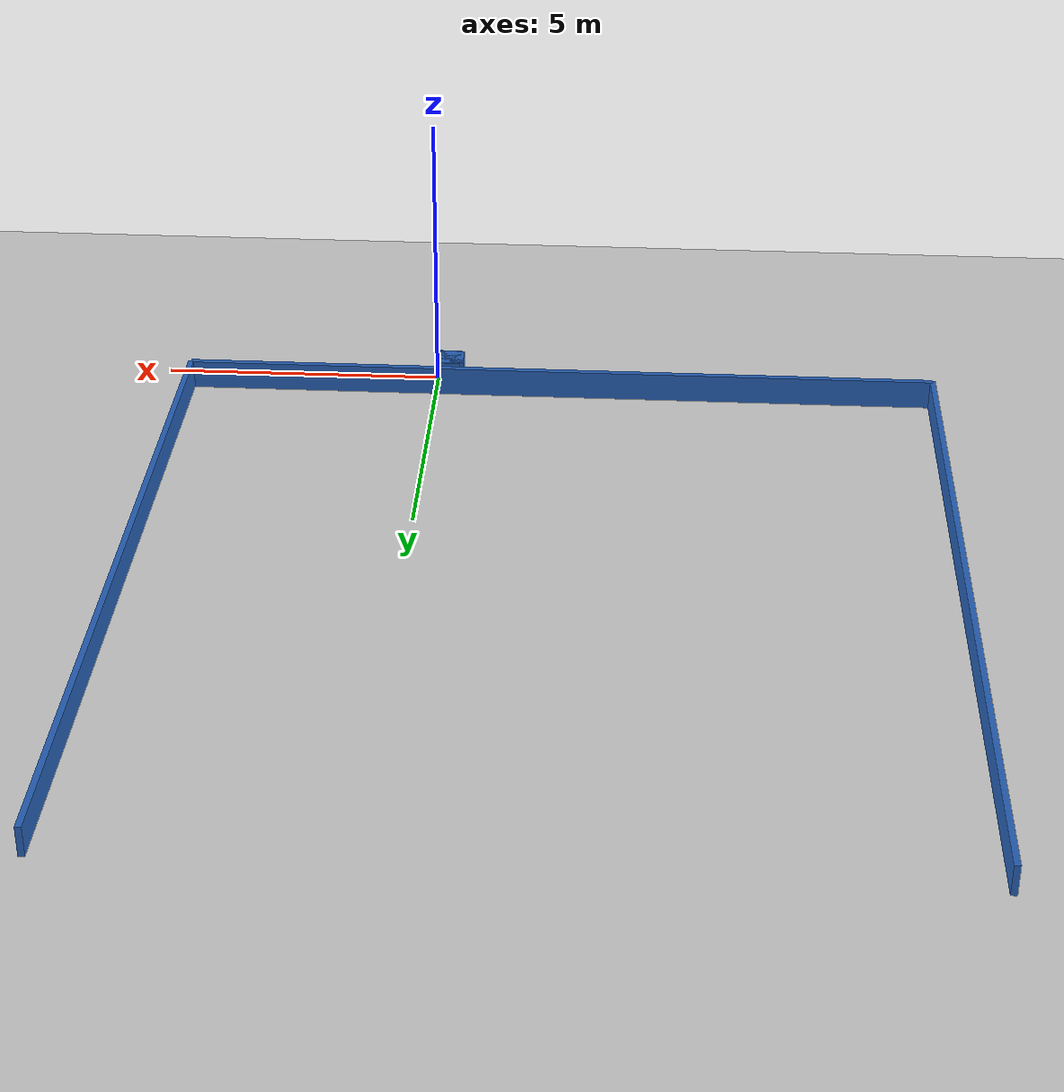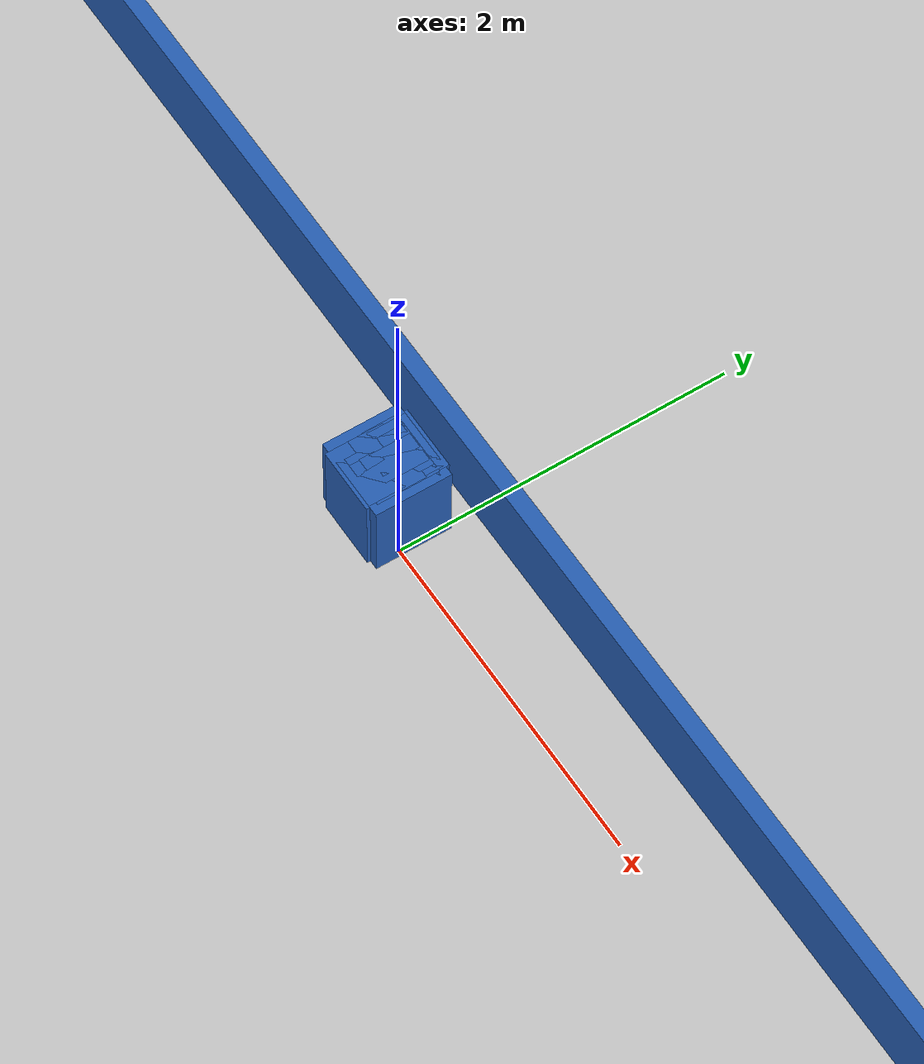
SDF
<?xml version="1.0" ?>
    <sdf version="1.5">
      <world name="default">
        <!-- A global light source -->
        <include>
          <uri>model://sun</uri>
        </include>
        <!-- A ground plane -->
        <include>
          <uri>model://ground_plane</uri>
        </include>

    <model name='libopen_space_final_T2B_91_29'>
      <static>1</static>
      <pose frame=''>-0.225000 0.075000 0.000000 0.000000 0.000000 0.000000</pose>
      <link name='link'>
        <inertial>
          <mass>1</mass>
          <inertia>
            <ixx>0.145833</ixx>
            <ixy>0</ixy>
            <ixz>0</ixz>
            <iyy>0.145833</iyy>
            <iyz>0</iyz>
            <izz>0.125</izz>
          </inertia>
        </inertial>
        <collision name='collision'>
          <geometry>
            <box>
              <size>0.50 0.45 1</size>
            </box>
          </geometry>
          <max_contacts>10</max_contacts>
          <surface>
            <contact>
              <ode/>
            </contact>
            <bounce/>
            <friction>
              <torsional>
                <ode/>
              </torsional>
              <ode/>
            </friction>
          </surface>
        </collision>
        <visual name='visual'>
          <geometry>
            <box>
              <size>0.50 0.45 1</size>
            </box>
          </geometry>
	    <material>
              <ambient>0.152000 0.379000 0.720000 1</ambient>
	      <diffuse>0.152000 0.379000 0.720000 1</diffuse>
          </material>
          <material>
            <script>
              <name>Gazebo/Grey</name>
              <uri>file://media/materials/scripts/gazebo.material</uri>
            </script>
          </material>
        </visual>
        <self_collide>0</self_collide>
        <kinematic>0</kinematic>
        <gravity>1</gravity>
      </link>
      <plugin name='libopen_space_final_T2B_91_29' filename='libopen_space_final_T2B_91_29.so'/>
    </model>

    <model name='libopen_space_final_T2B_118_50'>
      <static>1</static>
      <pose frame=''>-0.225000 0.075000 0.000000 0.000000 0.000000 0.000000</pose>
      <link name='link'>
        <inertial>
          <mass>1</mass>
          <inertia>
            <ixx>0.145833</ixx>
            <ixy>0</ixy>
            <ixz>0</ixz>
            <iyy>0.145833</iyy>
            <iyz>0</iyz>
            <izz>0.125</izz>
          </inertia>
        </inertial>
        <collision name='collision'>
          <geometry>
            <box>
              <size>0.23 0.36 1</size>
            </box>
          </geometry>
          <max_contacts>10</max_contacts>
          <surface>
            <contact>
              <ode/>
            </contact>
            <bounce/>
            <friction>
              <torsional>
                <ode/>
              </torsional>
              <ode/>
            </friction>
          </surface>
        </collision>
        <visual name='visual'>
          <geometry>
            <box>
              <size>0.23 0.36 1</size>
            </box>
          </geometry>
	    <material>
              <ambient>0.152000 0.379000 0.720000 1</ambient>
	      <diffuse>0.152000 0.379000 0.720000 1</diffuse>
          </material>
          <material>
            <script>
              <name>Gazebo/Grey</name>
              <uri>file://media/materials/scripts/gazebo.material</uri>
            </script>
          </material>
        </visual>
        <self_collide>0</self_collide>
        <kinematic>0</kinematic>
        <gravity>1</gravity>
      </link>
      <plugin name='libopen_space_final_T2B_118_50' filename='libopen_space_final_T2B_118_50.so'/>
    </model>

    <model name='libopen_space_final_T2B_83_23'>
      <static>1</static>
      <pose frame=''>-0.225000 0.075000 0.000000 0.000000 0.000000 0.000000</pose>
      <link name='link'>
        <inertial>
          <mass>1</mass>
          <inertia>
            <ixx>0.145833</ixx>
            <ixy>0</ixy>
            <ixz>0</ixz>
            <iyy>0.145833</iyy>
            <iyz>0</iyz>
            <izz>0.125</izz>
          </inertia>
        </inertial>
        <collision name='collision'>
          <geometry>
            <box>
              <size>0.24 0.25 1</size>
            </box>
          </geometry>
          <max_contacts>10</max_contacts>
          <surface>
            <contact>
              <ode/>
            </contact>
            <bounce/>
            <friction>
              <torsional>
                <ode/>
              </torsional>
              <ode/>
            </friction>
          </surface>
        </collision>
        <visual name='visual'>
          <geometry>
            <box>
              <size>0.24 0.25 1</size>
            </box>
          </geometry>
	    <material>
              <ambient>0.152000 0.379000 0.720000 1</ambient>
	      <diffuse>0.152000 0.379000 0.720000 1</diffuse>
          </material>
          <material>
            <script>
              <name>Gazebo/Grey</name>
              <uri>file://media/materials/scripts/gazebo.material</uri>
            </script>
          </material>
        </visual>
        <self_collide>0</self_collide>
        <kinematic>0</kinematic>
        <gravity>1</gravity>
      </link>
      <plugin name='libopen_space_final_T2B_83_23' filename='libopen_space_final_T2B_83_23.so'/>
    </model>

    <model name='libopen_space_final_T2B_127_53'>
      <static>1</static>
      <pose frame=''>-0.225000 0.075000 0.000000 0.000000 0.000000 0.000000</pose>
      <link name='link'>
        <inertial>
          <mass>1</mass>
          <inertia>
            <ixx>0.145833</ixx>
            <ixy>0</ixy>
            <ixz>0</ixz>
            <iyy>0.145833</iyy>
            <iyz>0</iyz>
            <izz>0.125</izz>
          </inertia>
        </inertial>
        <collision name='collision'>
          <geometry>
            <box>
              <size>0.48 0.35 1</size>
            </box>
          </geometry>
          <max_contacts>10</max_contacts>
          <surface>
            <contact>
              <ode/>
            </contact>
            <bounce/>
            <friction>
              <torsional>
                <ode/>
              </torsional>
              <ode/>
            </friction>
          </surface>
        </collision>
        <visual name='visual'>
          <geometry>
            <box>
              <size>0.48 0.35 1</size>
            </box>
          </geometry>
	    <material>
              <ambient>0.152000 0.379000 0.720000 1</ambient>
	      <diffuse>0.152000 0.379000 0.720000 1</diffuse>
          </material>
          <material>
            <script>
              <name>Gazebo/Grey</name>
              <uri>file://media/materials/scripts/gazebo.material</uri>
            </script>
          </material>
        </visual>
        <self_collide>0</self_collide>
        <kinematic>0</kinematic>
        <gravity>1</gravity>
      </link>
      <plugin name='libopen_space_final_T2B_127_53' filename='libopen_space_final_T2B_127_53.so'/>
    </model>

    <model name='libopen_space_final_T2B_111_12'>
      <static>1</static>
      <pose frame=''>-0.225000 0.075000 0.000000 0.000000 0.000000 0.000000</pose>
      <link name='link'>
        <inertial>
          <mass>1</mass>
          <inertia>
            <ixx>0.145833</ixx>
            <ixy>0</ixy>
            <ixz>0</ixz>
            <iyy>0.145833</iyy>
            <iyz>0</iyz>
            <izz>0.125</izz>
          </inertia>
        </inertial>
        <collision name='collision'>
          <geometry>
            <box>
              <size>0.37 0.45 1</size>
            </box>
          </geometry>
          <max_contacts>10</max_contacts>
          <surface>
            <contact>
              <ode/>
            </contact>
            <bounce/>
            <friction>
              <torsional>
                <ode/>
              </torsional>
              <ode/>
            </friction>
          </surface>
        </collision>
        <visual name='visual'>
          <geometry>
            <box>
              <size>0.37 0.45 1</size>
            </box>
          </geometry>
	    <material>
              <ambient>0.152000 0.379000 0.720000 1</ambient>
	      <diffuse>0.152000 0.379000 0.720000 1</diffuse>
          </material>
          <material>
            <script>
              <name>Gazebo/Grey</name>
              <uri>file://media/materials/scripts/gazebo.material</uri>
            </script>
          </material>
        </visual>
        <self_collide>0</self_collide>
        <kinematic>0</kinematic>
        <gravity>1</gravity>
      </link>
      <plugin name='libopen_space_final_T2B_111_12' filename='libopen_space_final_T2B_111_12.so'/>
    </model>

    <model name='libopen_space_final_T2B_134_32'>
      <static>1</static>
      <pose frame=''>-0.225000 0.075000 0.000000 0.000000 0.000000 0.000000</pose>
      <link name='link'>
        <inertial>
          <mass>1</mass>
          <inertia>
            <ixx>0.145833</ixx>
            <ixy>0</ixy>
            <ixz>0</ixz>
            <iyy>0.145833</iyy>
            <iyz>0</iyz>
            <izz>0.125</izz>
          </inertia>
        </inertial>
        <collision name='collision'>
          <geometry>
            <box>
              <size>0.39 0.49 1</size>
            </box>
          </geometry>
          <max_contacts>10</max_contacts>
          <surface>
            <contact>
              <ode/>
            </contact>
            <bounce/>
            <friction>
              <torsional>
                <ode/>
              </torsional>
              <ode/>
            </friction>
          </surface>
        </collision>
        <visual name='visual'>
          <geometry>
            <box>
              <size>0.39 0.49 1</size>
            </box>
          </geometry>
	    <material>
              <ambient>0.152000 0.379000 0.720000 1</ambient>
	      <diffuse>0.152000 0.379000 0.720000 1</diffuse>
          </material>
          <material>
            <script>
              <name>Gazebo/Grey</name>
              <uri>file://media/materials/scripts/gazebo.material</uri>
            </script>
          </material>
        </visual>
        <self_collide>0</self_collide>
        <kinematic>0</kinematic>
        <gravity>1</gravity>
      </link>
      <plugin name='libopen_space_final_T2B_134_32' filename='libopen_space_final_T2B_134_32.so'/>
    </model>

    <model name='libopen_space_final_T2B_94_31'>
      <static>1</static>
      <pose frame=''>-0.225000 0.075000 0.000000 0.000000 0.000000 0.000000</pose>
      <link name='link'>
        <inertial>
          <mass>1</mass>
          <inertia>
            <ixx>0.145833</ixx>
            <ixy>0</ixy>
            <ixz>0</ixz>
            <iyy>0.145833</iyy>
            <iyz>0</iyz>
            <izz>0.125</izz>
          </inertia>
        </inertial>
        <collision name='collision'>
          <geometry>
            <box>
              <size>0.30 0.37 1</size>
            </box>
          </geometry>
          <max_contacts>10</max_contacts>
          <surface>
            <contact>
              <ode/>
            </contact>
            <bounce/>
            <friction>
              <torsional>
                <ode/>
              </torsional>
              <ode/>
            </friction>
          </surface>
        </collision>
        <visual name='visual'>
          <geometry>
            <box>
              <size>0.30 0.37 1</size>
            </box>
          </geometry>
	    <material>
              <ambient>0.152000 0.379000 0.720000 1</ambient>
	      <diffuse>0.152000 0.379000 0.720000 1</diffuse>
          </material>
          <material>
            <script>
              <name>Gazebo/Grey</name>
              <uri>file://media/materials/scripts/gazebo.material</uri>
            </script>
          </material>
        </visual>
        <self_collide>0</self_collide>
        <kinematic>0</kinematic>
        <gravity>1</gravity>
      </link>
      <plugin name='libopen_space_final_T2B_94_31' filename='libopen_space_final_T2B_94_31.so'/>
    </model>

    <model name='libopen_space_final_T2B_77_58'>
      <static>1</static>
      <pose frame=''>-0.225000 0.075000 0.000000 0.000000 0.000000 0.000000</pose>
      <link name='link'>
        <inertial>
          <mass>1</mass>
          <inertia>
            <ixx>0.145833</ixx>
            <ixy>0</ixy>
            <ixz>0</ixz>
            <iyy>0.145833</iyy>
            <iyz>0</iyz>
            <izz>0.125</izz>
          </inertia>
        </inertial>
        <collision name='collision'>
          <geometry>
            <box>
              <size>0.39 0.22 1</size>
            </box>
          </geometry>
          <max_contacts>10</max_contacts>
          <surface>
            <contact>
              <ode/>
            </contact>
            <bounce/>
            <friction>
              <torsional>
                <ode/>
              </torsional>
              <ode/>
            </friction>
          </surface>
        </collision>
        <visual name='visual'>
          <geometry>
            <box>
              <size>0.39 0.22 1</size>
            </box>
          </geometry>
	    <material>
              <ambient>0.152000 0.379000 0.720000 1</ambient>
	      <diffuse>0.152000 0.379000 0.720000 1</diffuse>
          </material>
          <material>
            <script>
              <name>Gazebo/Grey</name>
              <uri>file://media/materials/scripts/gazebo.material</uri>
            </script>
          </material>
        </visual>
        <self_collide>0</self_collide>
        <kinematic>0</kinematic>
        <gravity>1</gravity>
      </link>
      <plugin name='libopen_space_final_T2B_77_58' filename='libopen_space_final_T2B_77_58.so'/>
    </model>

    <model name='libopen_space_final_T2B_52_73'>
      <static>1</static>
      <pose frame=''>-0.225000 0.075000 0.000000 0.000000 0.000000 0.000000</pose>
      <link name='link'>
        <inertial>
          <mass>1</mass>
          <inertia>
            <ixx>0.145833</ixx>
            <ixy>0</ixy>
            <ixz>0</ixz>
            <iyy>0.145833</iyy>
            <iyz>0</iyz>
            <izz>0.125</izz>
          </inertia>
        </inertial>
        <collision name='collision'>
          <geometry>
            <box>
              <size>0.15 0.14 1</size>
            </box>
          </geometry>
          <max_contacts>10</max_contacts>
          <surface>
            <contact>
              <ode/>
            </contact>
            <bounce/>
            <friction>
              <torsional>
                <ode/>
              </torsional>
              <ode/>
            </friction>
          </surface>
        </collision>
        <visual name='visual'>
          <geometry>
            <box>
              <size>0.15 0.14 1</size>
            </box>
          </geometry>
	    <material>
              <ambient>0.152000 0.379000 0.720000 1</ambient>
	      <diffuse>0.152000 0.379000 0.720000 1</diffuse>
          </material>
          <material>
            <script>
              <name>Gazebo/Grey</name>
              <uri>file://media/materials/scripts/gazebo.material</uri>
            </script>
          </material>
        </visual>
        <self_collide>0</self_collide>
        <kinematic>0</kinematic>
        <gravity>1</gravity>
      </link>
      <plugin name='libopen_space_final_T2B_52_73' filename='libopen_space_final_T2B_52_73.so'/>
    </model>

    <model name='libopen_space_final_T2B_125_67'>
      <static>1</static>
      <pose frame=''>-0.225000 0.075000 0.000000 0.000000 0.000000 0.000000</pose>
      <link name='link'>
        <inertial>
          <mass>1</mass>
          <inertia>
            <ixx>0.145833</ixx>
            <ixy>0</ixy>
            <ixz>0</ixz>
            <iyy>0.145833</iyy>
            <iyz>0</iyz>
            <izz>0.125</izz>
          </inertia>
        </inertial>
        <collision name='collision'>
          <geometry>
            <box>
              <size>0.40 0.37 1</size>
            </box>
          </geometry>
          <max_contacts>10</max_contacts>
          <surface>
            <contact>
              <ode/>
            </contact>
            <bounce/>
            <friction>
              <torsional>
                <ode/>
              </torsional>
              <ode/>
            </friction>
          </surface>
        </collision>
        <visual name='visual'>
          <geometry>
            <box>
              <size>0.40 0.37 1</size>
            </box>
          </geometry>
	    <material>
              <ambient>0.152000 0.379000 0.720000 1</ambient>
	      <diffuse>0.152000 0.379000 0.720000 1</diffuse>
          </material>
          <material>
            <script>
              <name>Gazebo/Grey</name>
              <uri>file://media/materials/scripts/gazebo.material</uri>
            </script>
          </material>
        </visual>
        <self_collide>0</self_collide>
        <kinematic>0</kinematic>
        <gravity>1</gravity>
      </link>
      <plugin name='libopen_space_final_T2B_125_67' filename='libopen_space_final_T2B_125_67.so'/>
    </model>

    <model name='libopen_space_final_T2B_79_93'>
      <static>1</static>
      <pose frame=''>-0.225000 0.075000 0.000000 0.000000 0.000000 0.000000</pose>
      <link name='link'>
        <inertial>
          <mass>1</mass>
          <inertia>
            <ixx>0.145833</ixx>
            <ixy>0</ixy>
            <ixz>0</ixz>
            <iyy>0.145833</iyy>
            <iyz>0</iyz>
            <izz>0.125</izz>
          </inertia>
        </inertial>
        <collision name='collision'>
          <geometry>
            <box>
              <size>0.27 0.35 1</size>
            </box>
          </geometry>
          <max_contacts>10</max_contacts>
          <surface>
            <contact>
              <ode/>
            </contact>
            <bounce/>
            <friction>
              <torsional>
                <ode/>
              </torsional>
              <ode/>
            </friction>
          </surface>
        </collision>
        <visual name='visual'>
          <geometry>
            <box>
              <size>0.27 0.35 1</size>
            </box>
          </geometry>
	    <material>
              <ambient>0.152000 0.379000 0.720000 1</ambient>
	      <diffuse>0.152000 0.379000 0.720000 1</diffuse>
          </material>
          <material>
            <script>
              <name>Gazebo/Grey</name>
              <uri>file://media/materials/scripts/gazebo.material</uri>
            </script>
          </material>
        </visual>
        <self_collide>0</self_collide>
        <kinematic>0</kinematic>
        <gravity>1</gravity>
      </link>
      <plugin name='libopen_space_final_T2B_79_93' filename='libopen_space_final_T2B_79_93.so'/>
    </model>

    <model name='libopen_space_final_T2B_126_41'>
      <static>1</static>
      <pose frame=''>-0.225000 0.075000 0.000000 0.000000 0.000000 0.000000</pose>
      <link name='link'>
        <inertial>
          <mass>1</mass>
          <inertia>
            <ixx>0.145833</ixx>
            <ixy>0</ixy>
            <ixz>0</ixz>
            <iyy>0.145833</iyy>
            <iyz>0</iyz>
            <izz>0.125</izz>
          </inertia>
        </inertial>
        <collision name='collision'>
          <geometry>
            <box>
              <size>0.14 0.36 1</size>
            </box>
          </geometry>
          <max_contacts>10</max_contacts>
          <surface>
            <contact>
              <ode/>
            </contact>
            <bounce/>
            <friction>
              <torsional>
                <ode/>
              </torsional>
              <ode/>
            </friction>
          </surface>
        </collision>
        <visual name='visual'>
          <geometry>
            <box>
              <size>0.14 0.36 1</size>
            </box>
          </geometry>
	    <material>
              <ambient>0.152000 0.379000 0.720000 1</ambient>
	      <diffuse>0.152000 0.379000 0.720000 1</diffuse>
          </material>
          <material>
            <script>
              <name>Gazebo/Grey</name>
              <uri>file://media/materials/scripts/gazebo.material</uri>
            </script>
          </material>
        </visual>
        <self_collide>0</self_collide>
        <kinematic>0</kinematic>
        <gravity>1</gravity>
      </link>
      <plugin name='libopen_space_final_T2B_126_41' filename='libopen_space_final_T2B_126_41.so'/>
    </model>

    <model name='libopen_space_final_T2B_115_16'>
      <static>1</static>
      <pose frame=''>-0.225000 0.075000 0.000000 0.000000 0.000000 0.000000</pose>
      <link name='link'>
        <inertial>
          <mass>1</mass>
          <inertia>
            <ixx>0.145833</ixx>
            <ixy>0</ixy>
            <ixz>0</ixz>
            <iyy>0.145833</iyy>
            <iyz>0</iyz>
            <izz>0.125</izz>
          </inertia>
        </inertial>
        <collision name='collision'>
          <geometry>
            <box>
              <size>0.15 0.24 1</size>
            </box>
          </geometry>
          <max_contacts>10</max_contacts>
          <surface>
            <contact>
              <ode/>
            </contact>
            <bounce/>
            <friction>
              <torsional>
                <ode/>
              </torsional>
              <ode/>
            </friction>
          </surface>
        </collision>
        <visual name='visual'>
          <geometry>
            <box>
              <size>0.15 0.24 1</size>
            </box>
          </geometry>
	    <material>
              <ambient>0.152000 0.379000 0.720000 1</ambient>
	      <diffuse>0.152000 0.379000 0.720000 1</diffuse>
          </material>
          <material>
            <script>
              <name>Gazebo/Grey</name>
              <uri>file://media/materials/scripts/gazebo.material</uri>
            </script>
          </material>
        </visual>
        <self_collide>0</self_collide>
        <kinematic>0</kinematic>
        <gravity>1</gravity>
      </link>
      <plugin name='libopen_space_final_T2B_115_16' filename='libopen_space_final_T2B_115_16.so'/>
    </model>

        <model name='bottom_wall'>
          <static>1</static>
          <pose frame=''>-2.25 0.5 0.000000 0.000000 0.000000 1.57079632</pose>
          <link name='link'>
            <inertial>
            <mass>1</mass>
            <inertia>
              <ixx>0.145833</ixx>
              <ixy>0</ixy>
              <ixz>0</ixz>
              <iyy>0.145833</iyy>
              <iyz>0</iyz>
              <izz>0.125</izz>
            </inertia>
            </inertial>
            <collision name='collision'>
            <geometry>
              <box>
              <size>0.1 13.5 1</size>
              </box>
            </geometry>
            <max_contacts>10</max_contacts>
            <surface>
              <contact>
              <ode/>
              </contact>
              <bounce/>
              <friction>
              <torsional>
                <ode/>
              </torsional>
              <ode/>
              </friction>
            </surface>
            </collision>
            <visual name='visual'>
            <geometry>
              <box>
              <size>0.1 13.5 1</size>
              </box>
            </geometry>
            <material>
              <ambient>0.152000 0.379000 0.720000 1</ambient>
            <diffuse>0.152000 0.379000 0.720000 1</diffuse>
            </material>
            <material>
              <script>
              <name>Gazebo/Grey</name>
              <uri>file://media/materials/scripts/gazebo.material</uri>
              </script>
            </material>
            </visual>
            <self_collide>0</self_collide>
            <kinematic>0</kinematic>
            <gravity>1</gravity>
          </link>
        </model>

        <model name='left_wall'>
          <static>1</static>
          <pose frame=''>-9 7.25 0.000000 0.000000 0.000000 0.000000</pose>
          <link name='link'>
            <inertial>
            <mass>1</mass>
            <inertia>
              <ixx>0.145833</ixx>
              <ixy>0</ixy>
              <ixz>0</ixz>
              <iyy>0.145833</iyy>
              <iyz>0</iyz>
              <izz>0.125</izz>
            </inertia>
            </inertial>
            <collision name='collision'>
            <geometry>
              <box>
              <size>0.1 13.5 1</size>
              </box>
            </geometry>
            <max_contacts>10</max_contacts>
            <surface>
              <contact>
              <ode/>
              </contact>
              <bounce/>
              <friction>
              <torsional>
                <ode/>
              </torsional>
              <ode/>
              </friction>
            </surface>
            </collision>
            <visual name='visual'>
            <geometry>
              <box>
              <size>0.1 13.5 1</size>
              </box>
            </geometry>
            <material>
              <ambient>0.152000 0.379000 0.720000 1</ambient>
            <diffuse>0.152000 0.379000 0.720000 1</diffuse>
            </material>
            <material>
              <script>
              <name>Gazebo/Grey</name>
              <uri>file://media/materials/scripts/gazebo.material</uri>
              </script>
            </material>
            </visual>
            <self_collide>0</self_collide>
            <kinematic>0</kinematic>
            <gravity>1</gravity>
          </link>
        </model>

        <model name='right_wall'>
          <static>1</static>
          <pose frame=''>4.5 7.25 0.000000 0.000000 0.000000 0.000000</pose>
          <link name='link'>
            <inertial>
            <mass>1</mass>
            <inertia>
              <ixx>0.145833</ixx>
              <ixy>0</ixy>
              <ixz>0</ixz>
              <iyy>0.145833</iyy>
              <iyz>0</iyz>
              <izz>0.125</izz>
            </inertia>
            </inertial>
            <collision name='collision'>
            <geometry>
              <box>
              <size>0.1 13.5 1</size>
              </box>
            </geometry>
            <max_contacts>10</max_contacts>
            <surface>
              <contact>
              <ode/>
              </contact>
              <bounce/>
              <friction>
              <torsional>
                <ode/>
              </torsional>
              <ode/>
              </friction>
            </surface>
            </collision>
            <visual name='visual'>
            <geometry>
              <box>
              <size>0.1 13.5 1</size>
              </box>
            </geometry>
            <material>
              <ambient>0.152000 0.379000 0.720000 1</ambient>
            <diffuse>0.152000 0.379000 0.720000 1</diffuse>
            </material>
            <material>
              <script>
              <name>Gazebo/Grey</name>
              <uri>file://media/materials/scripts/gazebo.material</uri>
              </script>
            </material>
            </visual>
            <self_collide>0</self_collide>
            <kinematic>0</kinematic>
            <gravity>1</gravity>
          </link>
        </model>

      </world>
    </sdf>"
